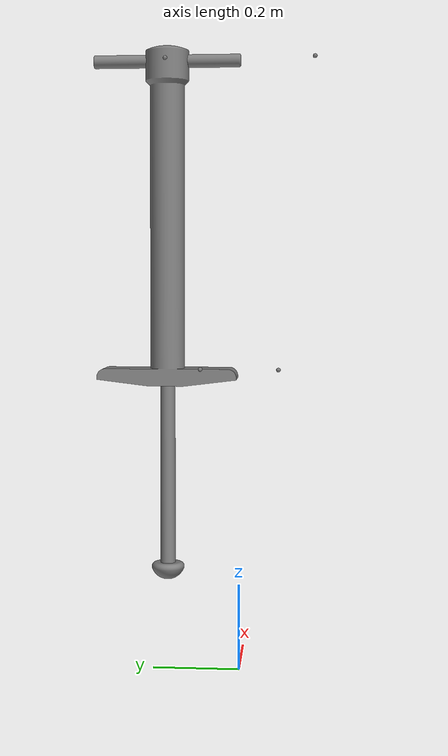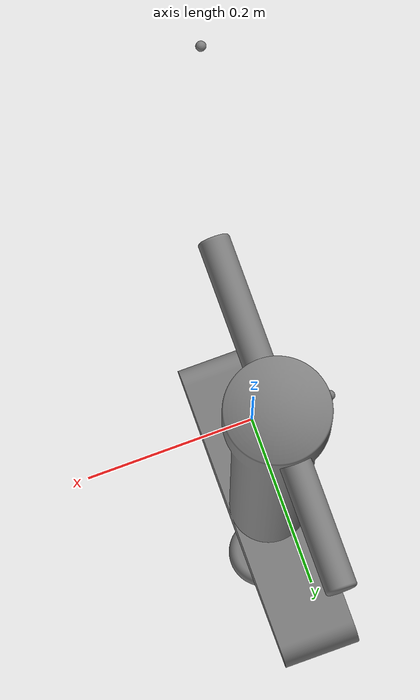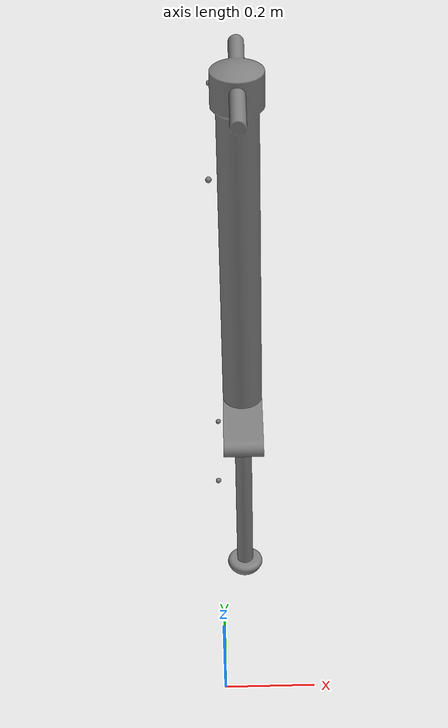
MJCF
<mujoco model="pogo_stick">
    <default>
        <geom type="mesh" density="7230"/>
    </default>
    <asset>
        <mesh name="pogo_lower" file="PogoBottom.STL" scale="0.001 0.001 0.001"/>
        <mesh name="pogo_upper" file="PogoTop.STL" scale="0.001 0.001 0.001"/>
    </asset>
    <worldbody>
        <body name="pogo_upper" pos="0 0 0.2">
            <joint name="pogo_top" type="free"/>
            <geom mesh="pogo_upper" xyaxes="0 1 0 0 0 1"/>
            <site name="left_grip" pos="0 0.17 1.21"/>
            <site name="right_grip" pos="0 -0.17 1.21"/>
            <site name="left_foothold" pos="0 0.09 0.5"/>
            <site name="right_foothold" pos="0 -0.09 0.5"/>
            <body name="pogo_lower">
                <joint name="pogo_bottom" range="-2 2" type="slide" axis="0 0 1" stiffness="25000" damping="0.1" springref="0.1"/>
                <geom name="pogo_lower" mesh="pogo_lower" xyaxes="0 1 0 0 0 1"/>
            </body>
        </body>

    </worldbody>
</mujoco>
